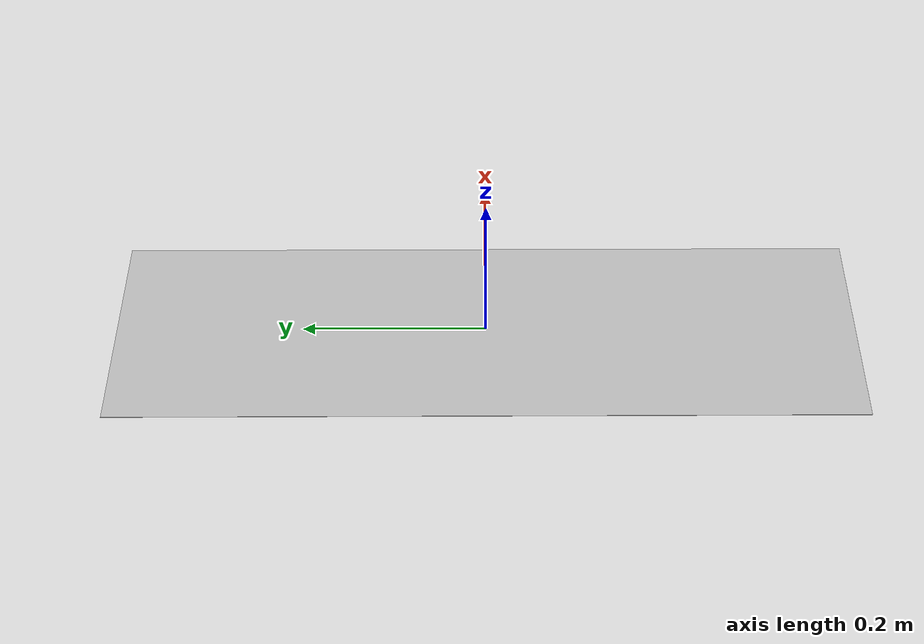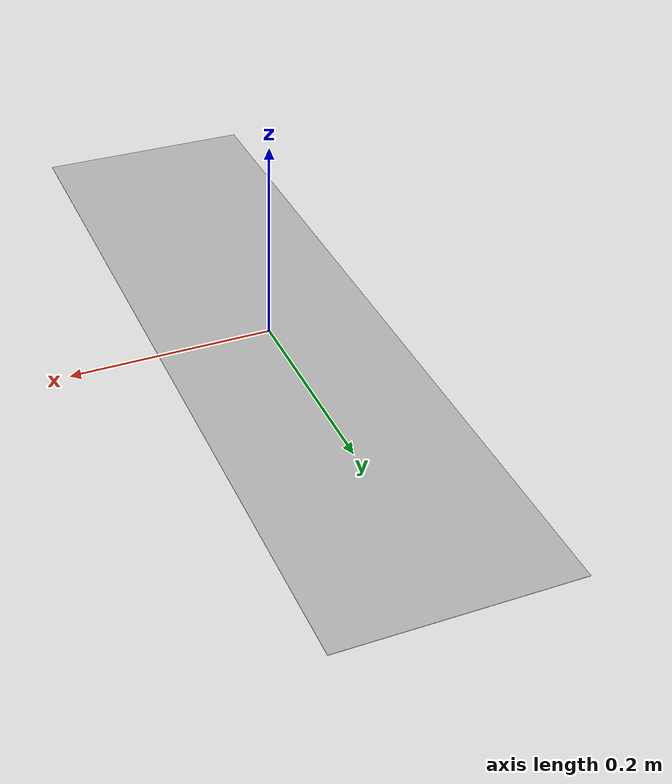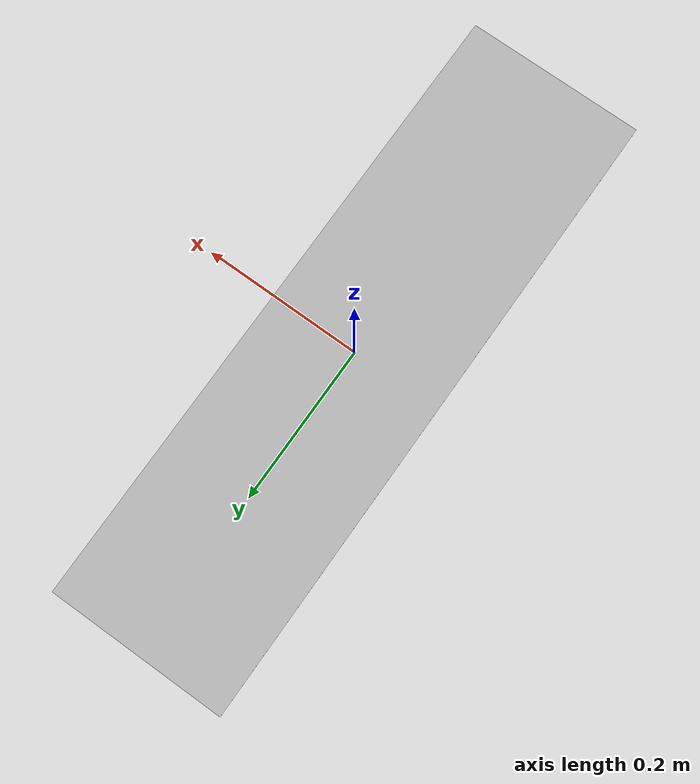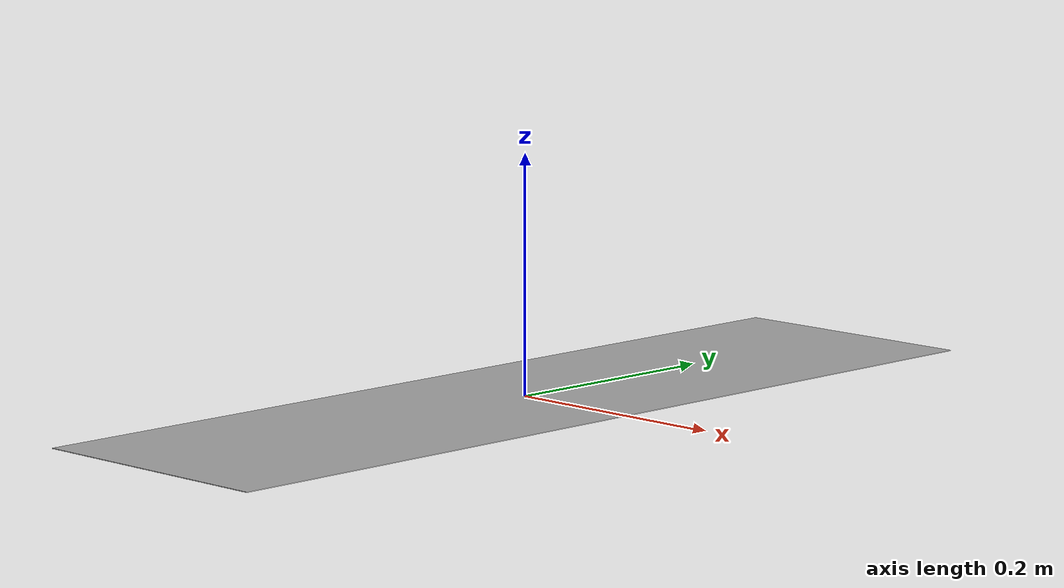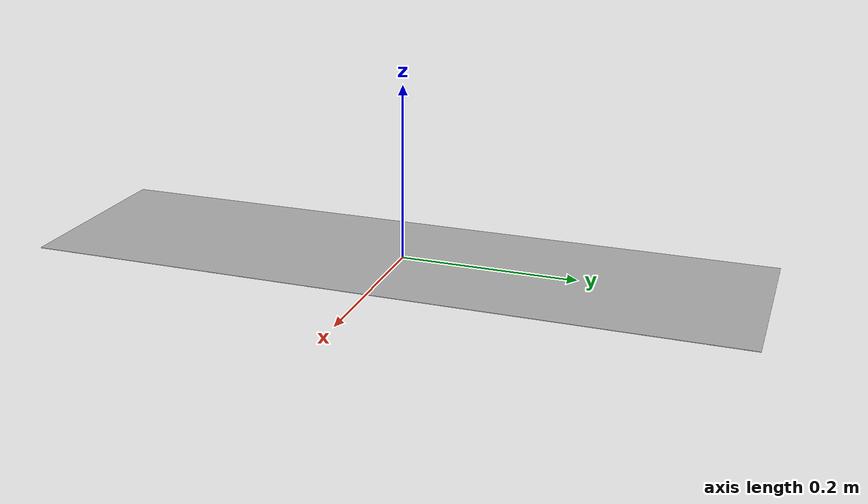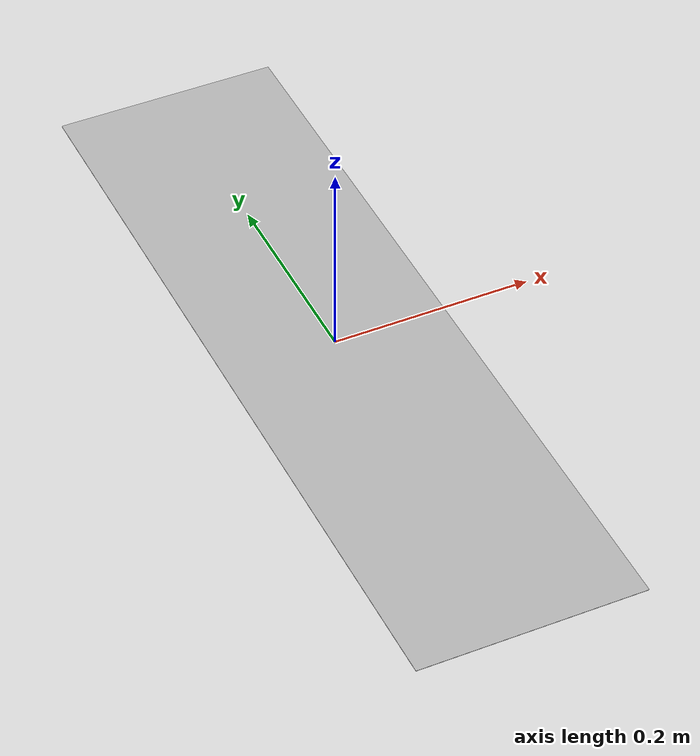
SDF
<?xml version='1.0'?>
<sdf version='1.5'>
  <model name='wrs_fcsc_event_0'>
    <static>1</static>
    <link name='link'>
      <inertial>
	<pose frame=''>0 0 0 0 -0 0</pose>
        <mass>12000</mass>
        <inertia>
          <ixx>1490.6</ixx>
          <ixy>0</ixy>
          <ixz>0</ixz>
          <iyy>1636.1</iyy>
          <iyz>0</iyz>
          <izz>481.7</izz>
        </inertia>
      </inertial>
      <visual name='visual'>
        <geometry>
          <mesh>
            <uri>model://wrs_fcsc_event_0/meshes/wrs_fcsc_event_0.dae</uri>
          </mesh>
        </geometry>
      </visual>
    </link>
  </model>
</sdf>
